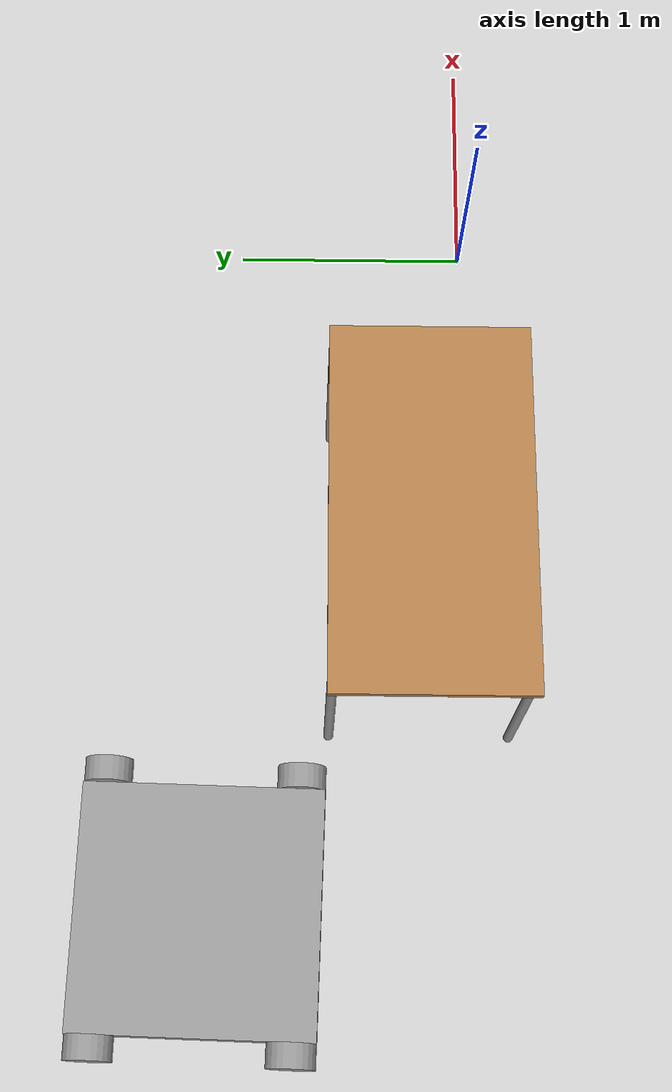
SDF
<sdf version="1.6">
 <world name="default">
  <model name="ground_plane">
   <static>1</static>
   <link name="link">
    <collision name="collision">
     <geometry><plane><normal>0 0 1</normal><size>100 100</size></plane></geometry>
     <surface>
      <contact><collide_bitmask>65535</collide_bitmask></contact>
      <friction><ode><mu>100</mu><mu2>50</mu2></ode></friction>
     </surface>
    </collision>
    <visual name="visual">
     <cast_shadows>0</cast_shadows>
     <geometry><plane><normal>0 0 1</normal><size>100 100</size></plane></geometry>
     <material>
      <script><uri>file://media/materials/scripts/gazebo.material</uri><name>Gazebo/Grey</name></script>
     </material>
    </visual>
   </link>
  </model>
  <model name="FourWheel_clone">
   <link name="link_1">
    <inertial>
     <mass>1</mass>
     <inertia>
      <ixx>0.166667</ixx>
      <ixy>0</ixy>
      <ixz>0</ixz>
      <iyy>0.166667</iyy>
      <iyz>0</iyz>
      <izz>0.166667</izz>
     </inertia>
    </inertial>
    <visual name="visual">
     <geometry><box><size>1 1 0.1</size></box></geometry>
     <material>
      <lighting>1</lighting>
      <script><uri>file://media/materials/scripts/gazebo.material</uri><name>Gazebo/Grey</name></script>
      <shader type="pixel"><normal_map>__default__</normal_map></shader>
      <ambient>0.3 0.3 0.3 1</ambient>
      <diffuse>0.7 0.7 0.7 1</diffuse>
      <specular>0.01 0.01 0.01 1</specular>
      <emissive>0 0 0 1</emissive>
     </material>
    </visual>
    <collision name="collision">
     <geometry><box><size>1 1 0.1</size></box></geometry>
     <surface>
      <friction>
       <ode><mu>1</mu><mu2>1</mu2><fdir1>0 0 0</fdir1><slip1>0</slip1><slip2>0</slip2></ode>
       <torsional>
        <coefficient>1</coefficient>
        <patch_radius>0</patch_radius>
        <surface_radius>0</surface_radius>
        <use_patch_radius>1</use_patch_radius>
        <ode><slip>0</slip></ode>
       </torsional>
      </friction>
      <bounce><restitution_coefficient>0</restitution_coefficient><threshold>1e+06</threshold></bounce>
      <contact>
       <collide_without_contact>0</collide_without_contact>
       <collide_without_contact_bitmask>1</collide_without_contact_bitmask>
       <collide_bitmask>1</collide_bitmask>
       <ode>
        <soft_cfm>0</soft_cfm>
        <soft_erp>0.2</soft_erp>
        <kp>1e+13</kp>
        <kd>1</kd>
        <max_vel>0.01</max_vel>
        <min_depth>0</min_depth>
       </ode>
       <bullet>
        <split_impulse>1</split_impulse>
        <split_impulse_penetration_threshold>-0.01</split_impulse_penetration_threshold>
        <soft_cfm>0</soft_cfm>
        <soft_erp>0.2</soft_erp>
        <kp>1e+13</kp>
        <kd>1</kd>
       </bullet>
      </contact>
     </surface>
    </collision>
   </link>
   <link name="link_2">
    <inertial>
     <mass>1</mass>
     <inertia><ixx>0.145833</ixx><ixy>0</ixy><ixz>0</ixz><iyy>0.145833</iyy><iyz>0</iyz><izz>0.125</izz></inertia>
     <pose>0 0 0 1.57 1.57 1.57</pose>
    </inertial>
    <pose>0.550159 -0.39996 -0.006984 0 -0 0</pose>
    <visual name="visual">
     <pose>0 0 0 1.57 -0 1.57</pose>
     <geometry><cylinder><radius>0.1</radius><length>0.1</length></cylinder></geometry>
     <material>
      <lighting>1</lighting>
      <script><uri>file://media/materials/scripts/gazebo.material</uri><name>Gazebo/Grey</name></script>
      <shader type="pixel"><normal_map>__default__</normal_map></shader>
      <ambient>0.3 0.3 0.3 1</ambient>
      <diffuse>0.7 0.7 0.7 1</diffuse>
      <specular>0.01 0.01 0.01 1</specular>
      <emissive>0 0 0 1</emissive>
     </material>
    </visual>
    <collision name="collision">
     <pose>0 0 0 1.57 -0 1.57</pose>
     <geometry><cylinder><radius>0.1</radius><length>0.1</length></cylinder></geometry>
     <surface>
      <friction>
       <ode><mu>1</mu><mu2>1</mu2><fdir1>0 0 0</fdir1><slip1>0</slip1><slip2>0</slip2></ode>
       <torsional>
        <coefficient>1</coefficient>
        <patch_radius>0</patch_radius>
        <surface_radius>0</surface_radius>
        <use_patch_radius>1</use_patch_radius>
        <ode><slip>0</slip></ode>
       </torsional>
      </friction>
      <bounce><restitution_coefficient>0</restitution_coefficient><threshold>1e+06</threshold></bounce>
      <contact>
       <collide_without_contact>0</collide_without_contact>
       <collide_without_contact_bitmask>1</collide_without_contact_bitmask>
       <collide_bitmask>1</collide_bitmask>
       <ode>
        <soft_cfm>0</soft_cfm>
        <soft_erp>0.2</soft_erp>
        <kp>1e+13</kp>
        <kd>1</kd>
        <max_vel>0.01</max_vel>
        <min_depth>0</min_depth>
       </ode>
       <bullet>
        <split_impulse>1</split_impulse>
        <split_impulse_penetration_threshold>-0.01</split_impulse_penetration_threshold>
        <soft_cfm>0</soft_cfm>
        <soft_erp>0.2</soft_erp>
        <kp>1e+13</kp>
        <kd>1</kd>
       </bullet>
      </contact>
     </surface>
    </collision>
   </link>
   <link name="link_2_clone">
    <inertial>
     <mass>1</mass>
     <inertia><ixx>0.145833</ixx><ixy>0</ixy><ixz>0</ixz><iyy>0.145833</iyy><iyz>0</iyz><izz>0.125</izz></inertia>
    </inertial>
    <pose>-0.550159 0.39996 0.012996 0 -0 0</pose>
    <visual name="visual">
     <pose>0 0 0 1.57 -0 1.57</pose>
     <geometry><cylinder><radius>0.1</radius><length>0.1</length></cylinder></geometry>
     <material>
      <lighting>1</lighting>
      <script><uri>file://media/materials/scripts/gazebo.material</uri><name>Gazebo/Grey</name></script>
      <shader type="pixel"><normal_map>__default__</normal_map></shader>
      <ambient>0.3 0.3 0.3 1</ambient>
      <diffuse>0.7 0.7 0.7 1</diffuse>
      <specular>0.01 0.01 0.01 1</specular>
      <emissive>0 0 0 1</emissive>
     </material>
    </visual>
    <collision name="collision">
     <pose>0 0 0 1.57 -0 1.57</pose>
     <geometry><cylinder><radius>0.1</radius><length>0.1</length></cylinder></geometry>
     <surface>
      <friction>
       <ode><mu>1</mu><mu2>1</mu2><fdir1>0 0 0</fdir1><slip1>0</slip1><slip2>0</slip2></ode>
       <torsional>
        <coefficient>1</coefficient>
        <patch_radius>0</patch_radius>
        <surface_radius>0</surface_radius>
        <use_patch_radius>1</use_patch_radius>
        <ode><slip>0</slip></ode>
       </torsional>
      </friction>
      <bounce><restitution_coefficient>0</restitution_coefficient><threshold>1e+06</threshold></bounce>
      <contact>
       <collide_without_contact>0</collide_without_contact>
       <collide_without_contact_bitmask>1</collide_without_contact_bitmask>
       <collide_bitmask>1</collide_bitmask>
       <ode>
        <soft_cfm>0</soft_cfm>
        <soft_erp>0.2</soft_erp>
        <kp>1e+13</kp>
        <kd>1</kd>
        <max_vel>0.01</max_vel>
        <min_depth>0</min_depth>
       </ode>
       <bullet>
        <split_impulse>1</split_impulse>
        <split_impulse_penetration_threshold>-0.01</split_impulse_penetration_threshold>
        <soft_cfm>0</soft_cfm>
        <soft_erp>0.2</soft_erp>
        <kp>1e+13</kp>
        <kd>1</kd>
       </bullet>
      </contact>
     </surface>
    </collision>
   </link>
   <link name="link_2_clone_0">
    <inertial>
     <mass>1</mass>
     <inertia><ixx>0.145833</ixx><ixy>0</ixy><ixz>0</ixz><iyy>0.145833</iyy><iyz>0</iyz><izz>0.125</izz></inertia>
    </inertial>
    <pose>0.550159 0.39996 0.012996 0 -0 0</pose>
    <visual name="visual">
     <pose>0 0 0 1.57 -0 1.57</pose>
     <geometry><cylinder><radius>0.1</radius><length>0.1</length></cylinder></geometry>
     <material>
      <lighting>1</lighting>
      <script><uri>file://media/materials/scripts/gazebo.material</uri><name>Gazebo/Grey</name></script>
      <shader type="pixel"><normal_map>__default__</normal_map></shader>
      <ambient>0.3 0.3 0.3 1</ambient>
      <diffuse>0.7 0.7 0.7 1</diffuse>
      <specular>0.01 0.01 0.01 1</specular>
      <emissive>0 0 0 1</emissive>
     </material>
    </visual>
    <collision name="collision">
     <pose>0 0 0 1.57 -0 1.57</pose>
     <geometry><cylinder><radius>0.1</radius><length>0.1</length></cylinder></geometry>
     <surface>
      <friction>
       <ode><mu>1</mu><mu2>1</mu2><fdir1>0 0 0</fdir1><slip1>0</slip1><slip2>0</slip2></ode>
       <torsional>
        <coefficient>1</coefficient>
        <patch_radius>0</patch_radius>
        <surface_radius>0</surface_radius>
        <use_patch_radius>1</use_patch_radius>
        <ode><slip>0</slip></ode>
       </torsional>
      </friction>
      <bounce><restitution_coefficient>0</restitution_coefficient><threshold>1e+06</threshold></bounce>
      <contact>
       <collide_without_contact>0</collide_without_contact>
       <collide_without_contact_bitmask>1</collide_without_contact_bitmask>
       <collide_bitmask>1</collide_bitmask>
       <ode>
        <soft_cfm>0</soft_cfm>
        <soft_erp>0.2</soft_erp>
        <kp>1e+13</kp>
        <kd>1</kd>
        <max_vel>0.01</max_vel>
        <min_depth>0</min_depth>
       </ode>
       <bullet>
        <split_impulse>1</split_impulse>
        <split_impulse_penetration_threshold>-0.01</split_impulse_penetration_threshold>
        <soft_cfm>0</soft_cfm>
        <soft_erp>0.2</soft_erp>
        <kp>1e+13</kp>
        <kd>1</kd>
       </bullet>
      </contact>
     </surface>
    </collision>
   </link>
   <link name="link_2_clone_1">
    <inertial>
     <mass>1</mass>
     <inertia><ixx>0.145833</ixx><ixy>0</ixy><ixz>0</ixz><iyy>0.145833</iyy><iyz>0</iyz><izz>0.125</izz></inertia>
     <pose>0 0 0 1.57 -0 1.57</pose>
    </inertial>
    <pose>-0.550159 -0.39996 0.012996 0 -0 0</pose>
    <visual name="visual">
     <pose>0 0 0 1.57 -0 1.57</pose>
     <geometry><cylinder><radius>0.1</radius><length>0.1</length></cylinder></geometry>
     <material>
      <lighting>1</lighting>
      <script><uri>file://media/materials/scripts/gazebo.material</uri><name>Gazebo/Grey</name></script>
      <shader type="pixel"><normal_map>__default__</normal_map></shader>
      <ambient>0.3 0.3 0.3 1</ambient>
      <diffuse>0.7 0.7 0.7 1</diffuse>
      <specular>0.01 0.01 0.01 1</specular>
      <emissive>0 0 0 1</emissive>
     </material>
    </visual>
    <collision name="collision">
     <pose>0 0 0 1.57 -0 1.57</pose>
     <geometry><cylinder><radius>0.1</radius><length>0.1</length></cylinder></geometry>
     <surface>
      <friction>
       <ode><mu>1</mu><mu2>1</mu2><fdir1>0 0 0</fdir1><slip1>0</slip1><slip2>0</slip2></ode>
       <torsional>
        <coefficient>1</coefficient>
        <patch_radius>0</patch_radius>
        <surface_radius>0</surface_radius>
        <use_patch_radius>1</use_patch_radius>
        <ode><slip>0</slip></ode>
       </torsional>
      </friction>
      <bounce><restitution_coefficient>0</restitution_coefficient><threshold>1e+06</threshold></bounce>
      <contact>
       <collide_without_contact>0</collide_without_contact>
       <collide_without_contact_bitmask>1</collide_without_contact_bitmask>
       <collide_bitmask>1</collide_bitmask>
       <ode>
        <soft_cfm>0</soft_cfm>
        <soft_erp>0.2</soft_erp>
        <kp>1e+13</kp>
        <kd>1</kd>
        <max_vel>0.01</max_vel>
        <min_depth>0</min_depth>
       </ode>
       <bullet>
        <split_impulse>1</split_impulse>
        <split_impulse_penetration_threshold>-0.01</split_impulse_penetration_threshold>
        <soft_cfm>0</soft_cfm>
        <soft_erp>0.2</soft_erp>
        <kp>1e+13</kp>
        <kd>1</kd>
       </bullet>
      </contact>
     </surface>
    </collision>
   </link>
   <joint name="link_1_JOINT_2" type="revolute">
    <parent>link_1</parent>
    <child>link_2_clone_0</child>
    <axis>
     <xyz>1 0 0</xyz>
     <use_parent_model_frame>0</use_parent_model_frame>
     <limit>
      <lower>-1.79769e+308</lower>
      <upper>1.79769e+308</upper>
      <effort>-1</effort>
      <velocity>-1</velocity>
     </limit>
     <dynamics>
      <spring_reference>0</spring_reference>
      <spring_stiffness>0</spring_stiffness>
      <damping>0</damping>
      <friction>0</friction>
     </dynamics>
    </axis>
    <physics>
     <ode><limit><cfm>0</cfm><erp>0.2</erp></limit><suspension><cfm>0</cfm><erp>0.2</erp></suspension></ode>
    </physics>
   </joint>
   <joint name="link_1_JOINT_3" type="revolute">
    <parent>link_1</parent>
    <child>link_2</child>
    <axis>
     <xyz>1 0 0</xyz>
     <use_parent_model_frame>0</use_parent_model_frame>
     <limit>
      <lower>-1.79769e+308</lower>
      <upper>1.79769e+308</upper>
      <effort>-1</effort>
      <velocity>-1</velocity>
     </limit>
     <dynamics>
      <spring_reference>0</spring_reference>
      <spring_stiffness>0</spring_stiffness>
      <damping>0</damping>
      <friction>0</friction>
     </dynamics>
    </axis>
    <physics>
     <ode><limit><cfm>0</cfm><erp>0.2</erp></limit><suspension><cfm>0</cfm><erp>0.2</erp></suspension></ode>
    </physics>
   </joint>
   <joint name="link_1_JOINT_4" type="revolute">
    <parent>link_1</parent>
    <child>link_2_clone_1</child>
    <axis>
     <xyz>1 0 0</xyz>
     <use_parent_model_frame>0</use_parent_model_frame>
     <limit>
      <lower>-1.79769e+308</lower>
      <upper>1.79769e+308</upper>
      <effort>-1</effort>
      <velocity>-1</velocity>
     </limit>
     <dynamics>
      <spring_reference>0</spring_reference>
      <spring_stiffness>0</spring_stiffness>
      <damping>0</damping>
      <friction>0</friction>
     </dynamics>
    </axis>
    <physics>
     <ode><limit><cfm>0</cfm><erp>0.2</erp></limit><suspension><cfm>0</cfm><erp>0.2</erp></suspension></ode>
    </physics>
   </joint>
   <joint name="link_1_JOINT_5" type="revolute">
    <parent>link_1</parent>
    <child>link_2_clone</child>
    <axis>
     <xyz>1 0 0</xyz>
     <use_parent_model_frame>0</use_parent_model_frame>
     <limit>
      <lower>-1.79769e+308</lower>
      <upper>1.79769e+308</upper>
      <effort>-1</effort>
      <velocity>-1</velocity>
     </limit>
     <dynamics>
      <spring_reference>0</spring_reference>
      <spring_stiffness>0</spring_stiffness>
      <damping>0</damping>
      <friction>0</friction>
     </dynamics>
    </axis>
    <physics>
     <ode><limit><cfm>0</cfm><erp>0.2</erp></limit><suspension><cfm>0</cfm><erp>0.2</erp></suspension></ode>
    </physics>
   </joint>
   <static>0</static>
   <pose>-3.00004 1.11499 0.096993 -0.024197 -0.000577 -0.028984</pose>
  </model>
  <model name="table">
   <static>1</static>
   <link name="link">
    <collision name="surface">
     <pose>0 0 1 0 -0 0</pose>
     <geometry><box><size>1.5 0.8 0.03</size></box></geometry>
     <surface><friction><ode><mu>0.6</mu><mu2>0.6</mu2></ode></friction></surface>
    </collision>
    <visual name="visual1">
     <pose>0 0 1 0 -0 0</pose>
     <geometry><box><size>1.5 0.8 0.03</size></box></geometry>
     <material>
      <script><uri>file://media/materials/scripts/gazebo.material</uri><name>Gazebo/Wood</name></script>
     </material>
    </visual>
    <collision name="front_left_leg">
     <pose>0.68 0.38 0.5 0 -0 0</pose>
     <geometry><cylinder><radius>0.02</radius><length>1</length></cylinder></geometry>
    </collision>
    <visual name="front_left_leg">
     <pose>0.68 0.38 0.5 0 -0 0</pose>
     <geometry><cylinder><radius>0.02</radius><length>1</length></cylinder></geometry>
     <material>
      <script><uri>file://media/materials/scripts/gazebo.material</uri><name>Gazebo/Grey</name></script>
     </material>
    </visual>
    <collision name="front_right_leg">
     <pose>0.68 -0.38 0.5 0 -0 0</pose>
     <geometry><cylinder><radius>0.02</radius><length>1</length></cylinder></geometry>
    </collision>
    <visual name="front_right_leg">
     <pose>0.68 -0.38 0.5 0 -0 0</pose>
     <geometry><cylinder><radius>0.02</radius><length>1</length></cylinder></geometry>
     <material>
      <script><uri>file://media/materials/scripts/gazebo.material</uri><name>Gazebo/Grey</name></script>
     </material>
    </visual>
    <collision name="back_right_leg">
     <pose>-0.68 -0.38 0.5 0 -0 0</pose>
     <geometry><cylinder><radius>0.02</radius><length>1</length></cylinder></geometry>
    </collision>
    <visual name="back_right_leg">
     <pose>-0.68 -0.38 0.5 0 -0 0</pose>
     <geometry><cylinder><radius>0.02</radius><length>1</length></cylinder></geometry>
     <material>
      <script><uri>file://media/materials/scripts/gazebo.material</uri><name>Gazebo/Grey</name></script>
     </material>
    </visual>
    <collision name="back_left_leg">
     <pose>-0.68 0.38 0.5 0 -0 0</pose>
     <geometry><cylinder><radius>0.02</radius><length>1</length></cylinder></geometry>
    </collision>
    <visual name="back_left_leg">
     <pose>-0.68 0.38 0.5 0 -0 0</pose>
     <geometry><cylinder><radius>0.02</radius><length>1</length></cylinder></geometry>
     <material>
      <script><uri>file://media/materials/scripts/gazebo.material</uri><name>Gazebo/Grey</name></script>
     </material>
    </visual>
   </link>
   <pose>-1.575 0.209646 0 0 -0 0</pose>
  </model>
 </world>
</sdf>
